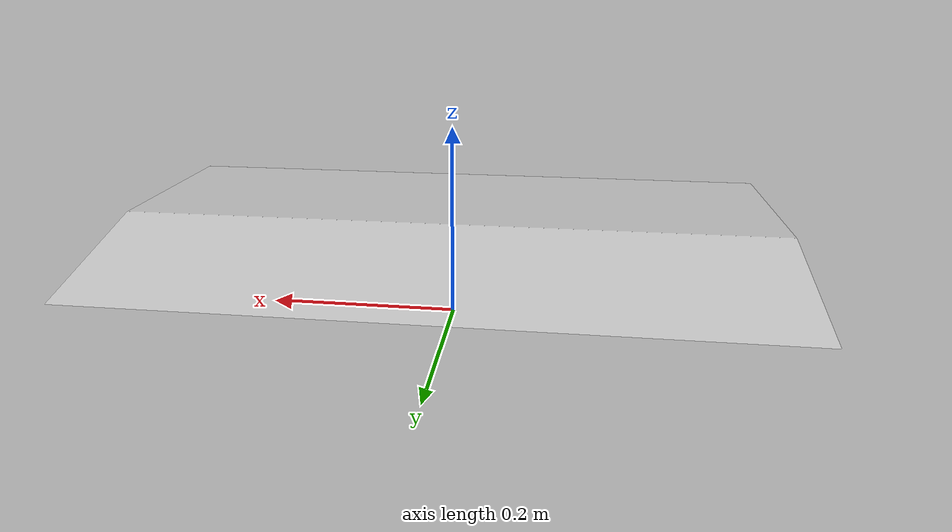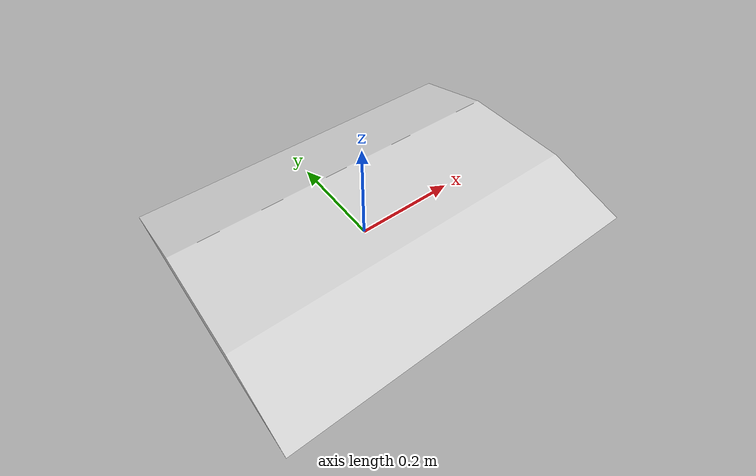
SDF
<?xml version="1.0"?>
<sdf version="1.9">
  <model name="Ramp">
    <static>true</static>
    <link name="link">
      <collision name="collision">
        <geometry>
          <mesh>
            <scale>0.05 0.05 0.05</scale>
            <uri>model://Circuito/Ramp/meshes/ramp.stl</uri>
          </mesh>
        </geometry>
      </collision>
      <visual name="ramp">
        <geometry>
          <mesh>
            <scale>0.05 0.05 0.05</scale>
            <uri>model://Circuito/Ramp/meshes/ramp.stl</uri>
          </mesh>
        </geometry>
        <material>
          <ambient>0.8 0.8 0.8 1</ambient>
          <diffuse>0.8 0.8 0.8 1</diffuse>
          <specular>1.0 1.0 1.0 1</specular>
        </material>
      </visual>
    </link>
  </model>
</sdf>
